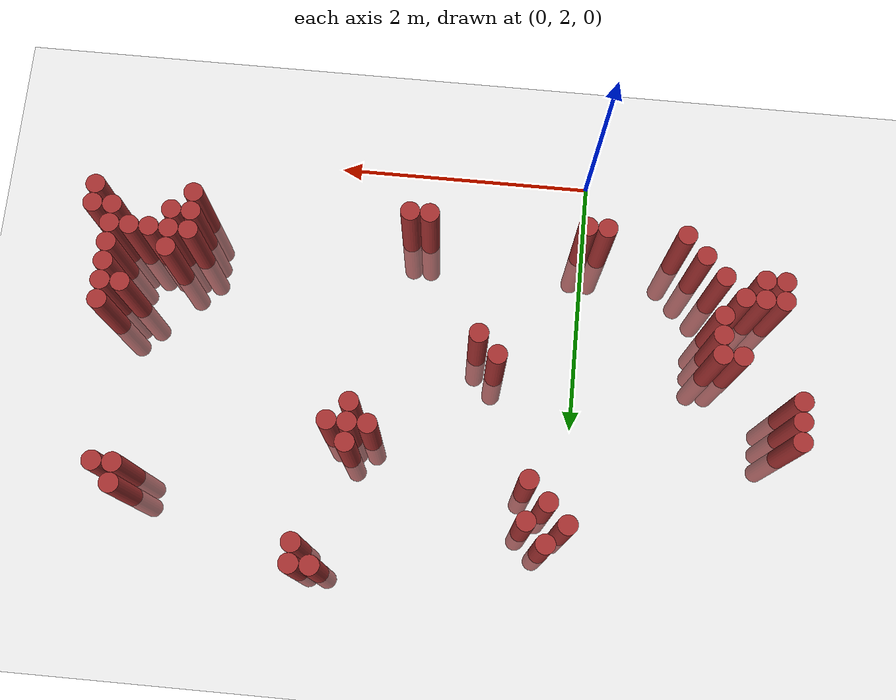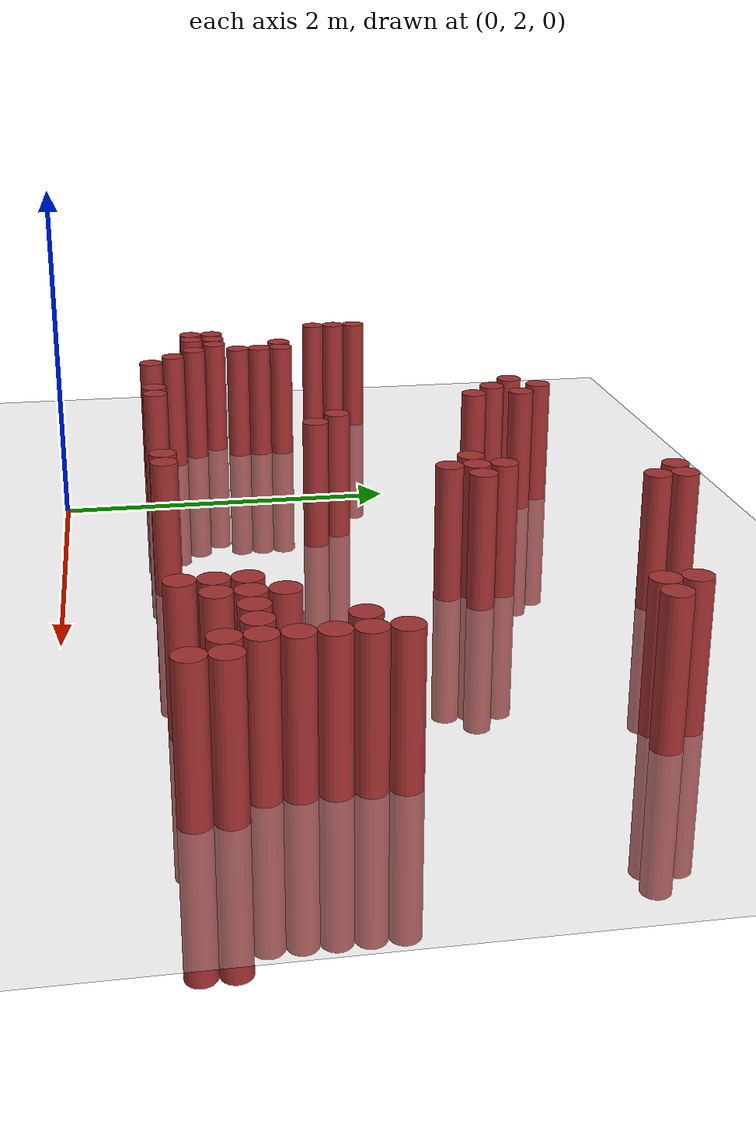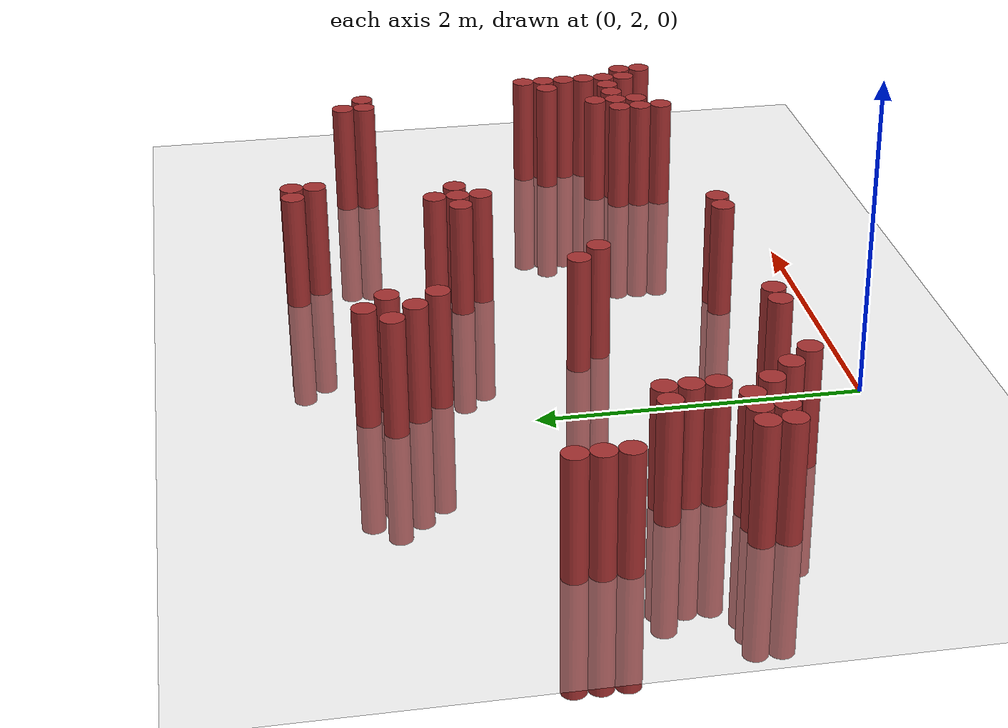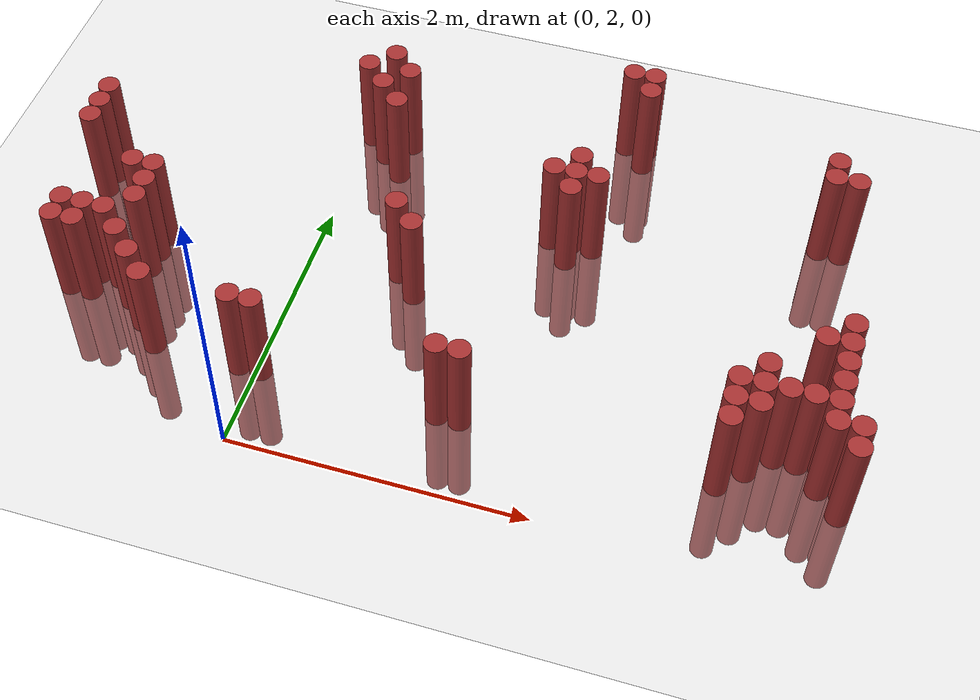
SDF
<sdf version="1.6">
 <world name="default">
  <model name="ground_plane">
   <static>1</static>
   <link name="link">
    <collision name="collision">
     <geometry><plane><normal>0 0 1</normal><size>100 100</size></plane></geometry>
     <surface><friction><ode><mu>100</mu><mu2>50</mu2></ode></friction></surface>
    </collision>
    <visual name="visual">
     <cast_shadows>0</cast_shadows>
     <geometry><plane><normal>0 0 1</normal><size>100 100</size></plane></geometry>
     <material>
      <script><uri>file://media/materials/scripts/gazebo.material</uri><name>Gazebo/Grey</name></script>
     </material>
    </visual>
   </link>
  </model>
  <model name="unit_cylinder_338">
   <static>1</static>
   <pose>-1.625000 3.775000 0.000000 0.000000 0.000000 0.000000</pose>
   <link name="link">
    <inertial>
     <mass>1</mass>
     <inertia><ixx>0.145833</ixx><ixy>0</ixy><ixz>0</ixz><iyy>0.145833</iyy><iyz>0</iyz><izz>0.125</izz></inertia>
    </inertial>
    <collision name="collision">
     <geometry><cylinder><radius>0.075000</radius><length>1.5</length></cylinder></geometry>
    </collision>
    <visual name="visual">
     <geometry><cylinder><radius>0.075000</radius><length>1.5</length></cylinder></geometry>
     <material>
      <ambient>0.648000 0.192000 0.192000 1</ambient>
      <diffuse>0.648000 0.192000 0.192000 1</diffuse>
     </material>
     <material>
      <script><name>Gazebo/Grey</name><uri>file://media/materials/scripts/gazebo.material</uri></script>
     </material>
    </visual>
   </link>
  </model>
  <model name="unit_cylinder_339">
   <static>1</static>
   <pose>-1.625000 3.925000 0.000000 0.000000 0.000000 0.000000</pose>
   <link name="link">
    <inertial>
     <mass>1</mass>
     <inertia><ixx>0.145833</ixx><ixy>0</ixy><ixz>0</ixz><iyy>0.145833</iyy><iyz>0</iyz><izz>0.125</izz></inertia>
    </inertial>
    <collision name="collision">
     <geometry><cylinder><radius>0.075000</radius><length>1.5</length></cylinder></geometry>
    </collision>
    <visual name="visual">
     <geometry><cylinder><radius>0.075000</radius><length>1.5</length></cylinder></geometry>
     <material>
      <ambient>0.648000 0.192000 0.192000 1</ambient>
      <diffuse>0.648000 0.192000 0.192000 1</diffuse>
     </material>
     <material>
      <script><name>Gazebo/Grey</name><uri>file://media/materials/scripts/gazebo.material</uri></script>
     </material>
    </visual>
   </link>
  </model>
  <model name="unit_cylinder_340">
   <static>1</static>
   <pose>-1.625000 4.075000 0.000000 0.000000 0.000000 0.000000</pose>
   <link name="link">
    <inertial>
     <mass>1</mass>
     <inertia><ixx>0.145833</ixx><ixy>0</ixy><ixz>0</ixz><iyy>0.145833</iyy><iyz>0</iyz><izz>0.125</izz></inertia>
    </inertial>
    <collision name="collision">
     <geometry><cylinder><radius>0.075000</radius><length>1.5</length></cylinder></geometry>
    </collision>
    <visual name="visual">
     <geometry><cylinder><radius>0.075000</radius><length>1.5</length></cylinder></geometry>
     <material>
      <ambient>0.648000 0.192000 0.192000 1</ambient>
      <diffuse>0.648000 0.192000 0.192000 1</diffuse>
     </material>
     <material>
      <script><name>Gazebo/Grey</name><uri>file://media/materials/scripts/gazebo.material</uri></script>
     </material>
    </visual>
   </link>
  </model>
  <model name="unit_cylinder_341">
   <static>1</static>
   <pose>-1.475000 2.875000 0.000000 0.000000 0.000000 0.000000</pose>
   <link name="link">
    <inertial>
     <mass>1</mass>
     <inertia><ixx>0.145833</ixx><ixy>0</ixy><ixz>0</ixz><iyy>0.145833</iyy><iyz>0</iyz><izz>0.125</izz></inertia>
    </inertial>
    <collision name="collision">
     <geometry><cylinder><radius>0.075000</radius><length>1.5</length></cylinder></geometry>
    </collision>
    <visual name="visual">
     <geometry><cylinder><radius>0.075000</radius><length>1.5</length></cylinder></geometry>
     <material>
      <ambient>0.648000 0.192000 0.192000 1</ambient>
      <diffuse>0.648000 0.192000 0.192000 1</diffuse>
     </material>
     <material>
      <script><name>Gazebo/Grey</name><uri>file://media/materials/scripts/gazebo.material</uri></script>
     </material>
    </visual>
   </link>
  </model>
  <model name="unit_cylinder_342">
   <static>1</static>
   <pose>-1.475000 3.025000 0.000000 0.000000 0.000000 0.000000</pose>
   <link name="link">
    <inertial>
     <mass>1</mass>
     <inertia><ixx>0.145833</ixx><ixy>0</ixy><ixz>0</ixz><iyy>0.145833</iyy><iyz>0</iyz><izz>0.125</izz></inertia>
    </inertial>
    <collision name="collision">
     <geometry><cylinder><radius>0.075000</radius><length>1.5</length></cylinder></geometry>
    </collision>
    <visual name="visual">
     <geometry><cylinder><radius>0.075000</radius><length>1.5</length></cylinder></geometry>
     <material>
      <ambient>0.648000 0.192000 0.192000 1</ambient>
      <diffuse>0.648000 0.192000 0.192000 1</diffuse>
     </material>
     <material>
      <script><name>Gazebo/Grey</name><uri>file://media/materials/scripts/gazebo.material</uri></script>
     </material>
    </visual>
   </link>
  </model>
  <model name="unit_cylinder_347">
   <static>1</static>
   <pose>-1.325000 2.875000 0.000000 0.000000 0.000000 0.000000</pose>
   <link name="link">
    <inertial>
     <mass>1</mass>
     <inertia><ixx>0.145833</ixx><ixy>0</ixy><ixz>0</ixz><iyy>0.145833</iyy><iyz>0</iyz><izz>0.125</izz></inertia>
    </inertial>
    <collision name="collision">
     <geometry><cylinder><radius>0.075000</radius><length>1.5</length></cylinder></geometry>
    </collision>
    <visual name="visual">
     <geometry><cylinder><radius>0.075000</radius><length>1.5</length></cylinder></geometry>
     <material>
      <ambient>0.648000 0.192000 0.192000 1</ambient>
      <diffuse>0.648000 0.192000 0.192000 1</diffuse>
     </material>
     <material>
      <script><name>Gazebo/Grey</name><uri>file://media/materials/scripts/gazebo.material</uri></script>
     </material>
    </visual>
   </link>
  </model>
  <model name="unit_cylinder_348">
   <static>1</static>
   <pose>-1.325000 3.025000 0.000000 0.000000 0.000000 0.000000</pose>
   <link name="link">
    <inertial>
     <mass>1</mass>
     <inertia><ixx>0.145833</ixx><ixy>0</ixy><ixz>0</ixz><iyy>0.145833</iyy><iyz>0</iyz><izz>0.125</izz></inertia>
    </inertial>
    <collision name="collision">
     <geometry><cylinder><radius>0.075000</radius><length>1.5</length></cylinder></geometry>
    </collision>
    <visual name="visual">
     <geometry><cylinder><radius>0.075000</radius><length>1.5</length></cylinder></geometry>
     <material>
      <ambient>0.648000 0.192000 0.192000 1</ambient>
      <diffuse>0.648000 0.192000 0.192000 1</diffuse>
     </material>
     <material>
      <script><name>Gazebo/Grey</name><uri>file://media/materials/scripts/gazebo.material</uri></script>
     </material>
    </visual>
   </link>
  </model>
  <model name="unit_cylinder_351">
   <static>1</static>
   <pose>-1.175000 3.025000 0.000000 0.000000 0.000000 0.000000</pose>
   <link name="link">
    <inertial>
     <mass>1</mass>
     <inertia><ixx>0.145833</ixx><ixy>0</ixy><ixz>0</ixz><iyy>0.145833</iyy><iyz>0</iyz><izz>0.125</izz></inertia>
    </inertial>
    <collision name="collision">
     <geometry><cylinder><radius>0.075000</radius><length>1.5</length></cylinder></geometry>
    </collision>
    <visual name="visual">
     <geometry><cylinder><radius>0.075000</radius><length>1.5</length></cylinder></geometry>
     <material>
      <ambient>0.648000 0.192000 0.192000 1</ambient>
      <diffuse>0.648000 0.192000 0.192000 1</diffuse>
     </material>
     <material>
      <script><name>Gazebo/Grey</name><uri>file://media/materials/scripts/gazebo.material</uri></script>
     </material>
    </visual>
   </link>
  </model>
  <model name="unit_cylinder_352">
   <static>1</static>
   <pose>-1.175000 3.475000 0.000000 0.000000 0.000000 0.000000</pose>
   <link name="link">
    <inertial>
     <mass>1</mass>
     <inertia><ixx>0.145833</ixx><ixy>0</ixy><ixz>0</ixz><iyy>0.145833</iyy><iyz>0</iyz><izz>0.125</izz></inertia>
    </inertial>
    <collision name="collision">
     <geometry><cylinder><radius>0.075000</radius><length>1.5</length></cylinder></geometry>
    </collision>
    <visual name="visual">
     <geometry><cylinder><radius>0.075000</radius><length>1.5</length></cylinder></geometry>
     <material>
      <ambient>0.648000 0.192000 0.192000 1</ambient>
      <diffuse>0.648000 0.192000 0.192000 1</diffuse>
     </material>
     <material>
      <script><name>Gazebo/Grey</name><uri>file://media/materials/scripts/gazebo.material</uri></script>
     </material>
    </visual>
   </link>
  </model>
  <model name="unit_cylinder_358">
   <static>1</static>
   <pose>-1.025000 2.875000 0.000000 0.000000 0.000000 0.000000</pose>
   <link name="link">
    <inertial>
     <mass>1</mass>
     <inertia><ixx>0.145833</ixx><ixy>0</ixy><ixz>0</ixz><iyy>0.145833</iyy><iyz>0</iyz><izz>0.125</izz></inertia>
    </inertial>
    <collision name="collision">
     <geometry><cylinder><radius>0.075000</radius><length>1.5</length></cylinder></geometry>
    </collision>
    <visual name="visual">
     <geometry><cylinder><radius>0.075000</radius><length>1.5</length></cylinder></geometry>
     <material>
      <ambient>0.648000 0.192000 0.192000 1</ambient>
      <diffuse>0.648000 0.192000 0.192000 1</diffuse>
     </material>
     <material>
      <script><name>Gazebo/Grey</name><uri>file://media/materials/scripts/gazebo.material</uri></script>
     </material>
    </visual>
   </link>
  </model>
  <model name="unit_cylinder_359">
   <static>1</static>
   <pose>-1.025000 3.175000 0.000000 0.000000 0.000000 0.000000</pose>
   <link name="link">
    <inertial>
     <mass>1</mass>
     <inertia><ixx>0.145833</ixx><ixy>0</ixy><ixz>0</ixz><iyy>0.145833</iyy><iyz>0</iyz><izz>0.125</izz></inertia>
    </inertial>
    <collision name="collision">
     <geometry><cylinder><radius>0.075000</radius><length>1.5</length></cylinder></geometry>
    </collision>
    <visual name="visual">
     <geometry><cylinder><radius>0.075000</radius><length>1.5</length></cylinder></geometry>
     <material>
      <ambient>0.648000 0.192000 0.192000 1</ambient>
      <diffuse>0.648000 0.192000 0.192000 1</diffuse>
     </material>
     <material>
      <script><name>Gazebo/Grey</name><uri>file://media/materials/scripts/gazebo.material</uri></script>
     </material>
    </visual>
   </link>
  </model>
  <model name="unit_cylinder_360">
   <static>1</static>
   <pose>-1.025000 3.325000 0.000000 0.000000 0.000000 0.000000</pose>
   <link name="link">
    <inertial>
     <mass>1</mass>
     <inertia><ixx>0.145833</ixx><ixy>0</ixy><ixz>0</ixz><iyy>0.145833</iyy><iyz>0</iyz><izz>0.125</izz></inertia>
    </inertial>
    <collision name="collision">
     <geometry><cylinder><radius>0.075000</radius><length>1.5</length></cylinder></geometry>
    </collision>
    <visual name="visual">
     <geometry><cylinder><radius>0.075000</radius><length>1.5</length></cylinder></geometry>
     <material>
      <ambient>0.648000 0.192000 0.192000 1</ambient>
      <diffuse>0.648000 0.192000 0.192000 1</diffuse>
     </material>
     <material>
      <script><name>Gazebo/Grey</name><uri>file://media/materials/scripts/gazebo.material</uri></script>
     </material>
    </visual>
   </link>
  </model>
  <model name="unit_cylinder_361">
   <static>1</static>
   <pose>-1.025000 3.475000 0.000000 0.000000 0.000000 0.000000</pose>
   <link name="link">
    <inertial>
     <mass>1</mass>
     <inertia><ixx>0.145833</ixx><ixy>0</ixy><ixz>0</ixz><iyy>0.145833</iyy><iyz>0</iyz><izz>0.125</izz></inertia>
    </inertial>
    <collision name="collision">
     <geometry><cylinder><radius>0.075000</radius><length>1.5</length></cylinder></geometry>
    </collision>
    <visual name="visual">
     <geometry><cylinder><radius>0.075000</radius><length>1.5</length></cylinder></geometry>
     <material>
      <ambient>0.648000 0.192000 0.192000 1</ambient>
      <diffuse>0.648000 0.192000 0.192000 1</diffuse>
     </material>
     <material>
      <script><name>Gazebo/Grey</name><uri>file://media/materials/scripts/gazebo.material</uri></script>
     </material>
    </visual>
   </link>
  </model>
  <model name="unit_cylinder_366">
   <static>1</static>
   <pose>-0.875000 2.725000 0.000000 0.000000 0.000000 0.000000</pose>
   <link name="link">
    <inertial>
     <mass>1</mass>
     <inertia><ixx>0.145833</ixx><ixy>0</ixy><ixz>0</ixz><iyy>0.145833</iyy><iyz>0</iyz><izz>0.125</izz></inertia>
    </inertial>
    <collision name="collision">
     <geometry><cylinder><radius>0.075000</radius><length>1.5</length></cylinder></geometry>
    </collision>
    <visual name="visual">
     <geometry><cylinder><radius>0.075000</radius><length>1.5</length></cylinder></geometry>
     <material>
      <ambient>0.648000 0.192000 0.192000 1</ambient>
      <diffuse>0.648000 0.192000 0.192000 1</diffuse>
     </material>
     <material>
      <script><name>Gazebo/Grey</name><uri>file://media/materials/scripts/gazebo.material</uri></script>
     </material>
    </visual>
   </link>
  </model>
  <model name="unit_cylinder_370">
   <static>1</static>
   <pose>-0.725000 2.575000 0.000000 0.000000 0.000000 0.000000</pose>
   <link name="link">
    <inertial>
     <mass>1</mass>
     <inertia><ixx>0.145833</ixx><ixy>0</ixy><ixz>0</ixz><iyy>0.145833</iyy><iyz>0</iyz><izz>0.125</izz></inertia>
    </inertial>
    <collision name="collision">
     <geometry><cylinder><radius>0.075000</radius><length>1.5</length></cylinder></geometry>
    </collision>
    <visual name="visual">
     <geometry><cylinder><radius>0.075000</radius><length>1.5</length></cylinder></geometry>
     <material>
      <ambient>0.648000 0.192000 0.192000 1</ambient>
      <diffuse>0.648000 0.192000 0.192000 1</diffuse>
     </material>
     <material>
      <script><name>Gazebo/Grey</name><uri>file://media/materials/scripts/gazebo.material</uri></script>
     </material>
    </visual>
   </link>
  </model>
  <model name="unit_cylinder_386">
   <static>1</static>
   <pose>-0.125000 2.575000 0.000000 0.000000 0.000000 0.000000</pose>
   <link name="link">
    <inertial>
     <mass>1</mass>
     <inertia><ixx>0.145833</ixx><ixy>0</ixy><ixz>0</ixz><iyy>0.145833</iyy><iyz>0</iyz><izz>0.125</izz></inertia>
    </inertial>
    <collision name="collision">
     <geometry><cylinder><radius>0.075000</radius><length>1.5</length></cylinder></geometry>
    </collision>
    <visual name="visual">
     <geometry><cylinder><radius>0.075000</radius><length>1.5</length></cylinder></geometry>
     <material>
      <ambient>0.648000 0.192000 0.192000 1</ambient>
      <diffuse>0.648000 0.192000 0.192000 1</diffuse>
     </material>
     <material>
      <script><name>Gazebo/Grey</name><uri>file://media/materials/scripts/gazebo.material</uri></script>
     </material>
    </visual>
   </link>
  </model>
  <model name="unit_cylinder_389">
   <static>1</static>
   <pose>0.025000 2.575000 0.000000 0.000000 0.000000 0.000000</pose>
   <link name="link">
    <inertial>
     <mass>1</mass>
     <inertia><ixx>0.145833</ixx><ixy>0</ixy><ixz>0</ixz><iyy>0.145833</iyy><iyz>0</iyz><izz>0.125</izz></inertia>
    </inertial>
    <collision name="collision">
     <geometry><cylinder><radius>0.075000</radius><length>1.5</length></cylinder></geometry>
    </collision>
    <visual name="visual">
     <geometry><cylinder><radius>0.075000</radius><length>1.5</length></cylinder></geometry>
     <material>
      <ambient>0.648000 0.192000 0.192000 1</ambient>
      <diffuse>0.648000 0.192000 0.192000 1</diffuse>
     </material>
     <material>
      <script><name>Gazebo/Grey</name><uri>file://media/materials/scripts/gazebo.material</uri></script>
     </material>
    </visual>
   </link>
  </model>
  <model name="unit_cylinder_390">
   <static>1</static>
   <pose>0.025000 4.825000 0.000000 0.000000 0.000000 0.000000</pose>
   <link name="link">
    <inertial>
     <mass>1</mass>
     <inertia><ixx>0.145833</ixx><ixy>0</ixy><ixz>0</ixz><iyy>0.145833</iyy><iyz>0</iyz><izz>0.125</izz></inertia>
    </inertial>
    <collision name="collision">
     <geometry><cylinder><radius>0.075000</radius><length>1.5</length></cylinder></geometry>
    </collision>
    <visual name="visual">
     <geometry><cylinder><radius>0.075000</radius><length>1.5</length></cylinder></geometry>
     <material>
      <ambient>0.648000 0.192000 0.192000 1</ambient>
      <diffuse>0.648000 0.192000 0.192000 1</diffuse>
     </material>
     <material>
      <script><name>Gazebo/Grey</name><uri>file://media/materials/scripts/gazebo.material</uri></script>
     </material>
    </visual>
   </link>
  </model>
  <model name="unit_cylinder_392">
   <static>1</static>
   <pose>0.175000 4.675000 0.000000 0.000000 0.000000 0.000000</pose>
   <link name="link">
    <inertial>
     <mass>1</mass>
     <inertia><ixx>0.145833</ixx><ixy>0</ixy><ixz>0</ixz><iyy>0.145833</iyy><iyz>0</iyz><izz>0.125</izz></inertia>
    </inertial>
    <collision name="collision">
     <geometry><cylinder><radius>0.075000</radius><length>1.5</length></cylinder></geometry>
    </collision>
    <visual name="visual">
     <geometry><cylinder><radius>0.075000</radius><length>1.5</length></cylinder></geometry>
     <material>
      <ambient>0.648000 0.192000 0.192000 1</ambient>
      <diffuse>0.648000 0.192000 0.192000 1</diffuse>
     </material>
     <material>
      <script><name>Gazebo/Grey</name><uri>file://media/materials/scripts/gazebo.material</uri></script>
     </material>
    </visual>
   </link>
  </model>
  <model name="unit_cylinder_393">
   <static>1</static>
   <pose>0.175000 4.975000 0.000000 0.000000 0.000000 0.000000</pose>
   <link name="link">
    <inertial>
     <mass>1</mass>
     <inertia><ixx>0.145833</ixx><ixy>0</ixy><ixz>0</ixz><iyy>0.145833</iyy><iyz>0</iyz><izz>0.125</izz></inertia>
    </inertial>
    <collision name="collision">
     <geometry><cylinder><radius>0.075000</radius><length>1.5</length></cylinder></geometry>
    </collision>
    <visual name="visual">
     <geometry><cylinder><radius>0.075000</radius><length>1.5</length></cylinder></geometry>
     <material>
      <ambient>0.648000 0.192000 0.192000 1</ambient>
      <diffuse>0.648000 0.192000 0.192000 1</diffuse>
     </material>
     <material>
      <script><name>Gazebo/Grey</name><uri>file://media/materials/scripts/gazebo.material</uri></script>
     </material>
    </visual>
   </link>
  </model>
  <model name="unit_cylinder_394">
   <static>1</static>
   <pose>0.325000 4.525000 0.000000 0.000000 0.000000 0.000000</pose>
   <link name="link">
    <inertial>
     <mass>1</mass>
     <inertia><ixx>0.145833</ixx><ixy>0</ixy><ixz>0</ixz><iyy>0.145833</iyy><iyz>0</iyz><izz>0.125</izz></inertia>
    </inertial>
    <collision name="collision">
     <geometry><cylinder><radius>0.075000</radius><length>1.5</length></cylinder></geometry>
    </collision>
    <visual name="visual">
     <geometry><cylinder><radius>0.075000</radius><length>1.5</length></cylinder></geometry>
     <material>
      <ambient>0.648000 0.192000 0.192000 1</ambient>
      <diffuse>0.648000 0.192000 0.192000 1</diffuse>
     </material>
     <material>
      <script><name>Gazebo/Grey</name><uri>file://media/materials/scripts/gazebo.material</uri></script>
     </material>
    </visual>
   </link>
  </model>
  <model name="unit_cylinder_395">
   <static>1</static>
   <pose>0.325000 4.825000 0.000000 0.000000 0.000000 0.000000</pose>
   <link name="link">
    <inertial>
     <mass>1</mass>
     <inertia><ixx>0.145833</ixx><ixy>0</ixy><ixz>0</ixz><iyy>0.145833</iyy><iyz>0</iyz><izz>0.125</izz></inertia>
    </inertial>
    <collision name="collision">
     <geometry><cylinder><radius>0.075000</radius><length>1.5</length></cylinder></geometry>
    </collision>
    <visual name="visual">
     <geometry><cylinder><radius>0.075000</radius><length>1.5</length></cylinder></geometry>
     <material>
      <ambient>0.648000 0.192000 0.192000 1</ambient>
      <diffuse>0.648000 0.192000 0.192000 1</diffuse>
     </material>
     <material>
      <script><name>Gazebo/Grey</name><uri>file://media/materials/scripts/gazebo.material</uri></script>
     </material>
    </visual>
   </link>
  </model>
  <model name="unit_cylinder_396">
   <static>1</static>
   <pose>0.625000 3.625000 0.000000 0.000000 0.000000 0.000000</pose>
   <link name="link">
    <inertial>
     <mass>1</mass>
     <inertia><ixx>0.145833</ixx><ixy>0</ixy><ixz>0</ixz><iyy>0.145833</iyy><iyz>0</iyz><izz>0.125</izz></inertia>
    </inertial>
    <collision name="collision">
     <geometry><cylinder><radius>0.075000</radius><length>1.5</length></cylinder></geometry>
    </collision>
    <visual name="visual">
     <geometry><cylinder><radius>0.075000</radius><length>1.5</length></cylinder></geometry>
     <material>
      <ambient>0.648000 0.192000 0.192000 1</ambient>
      <diffuse>0.648000 0.192000 0.192000 1</diffuse>
     </material>
     <material>
      <script><name>Gazebo/Grey</name><uri>file://media/materials/scripts/gazebo.material</uri></script>
     </material>
    </visual>
   </link>
  </model>
  <model name="unit_cylinder_397">
   <static>1</static>
   <pose>0.775000 3.475000 0.000000 0.000000 0.000000 0.000000</pose>
   <link name="link">
    <inertial>
     <mass>1</mass>
     <inertia><ixx>0.145833</ixx><ixy>0</ixy><ixz>0</ixz><iyy>0.145833</iyy><iyz>0</iyz><izz>0.125</izz></inertia>
    </inertial>
    <collision name="collision">
     <geometry><cylinder><radius>0.075000</radius><length>1.5</length></cylinder></geometry>
    </collision>
    <visual name="visual">
     <geometry><cylinder><radius>0.075000</radius><length>1.5</length></cylinder></geometry>
     <material>
      <ambient>0.648000 0.192000 0.192000 1</ambient>
      <diffuse>0.648000 0.192000 0.192000 1</diffuse>
     </material>
     <material>
      <script><name>Gazebo/Grey</name><uri>file://media/materials/scripts/gazebo.material</uri></script>
     </material>
    </visual>
   </link>
  </model>
  <model name="unit_cylinder_398">
   <static>1</static>
   <pose>1.225000 2.575000 0.000000 0.000000 0.000000 0.000000</pose>
   <link name="link">
    <inertial>
     <mass>1</mass>
     <inertia><ixx>0.145833</ixx><ixy>0</ixy><ixz>0</ixz><iyy>0.145833</iyy><iyz>0</iyz><izz>0.125</izz></inertia>
    </inertial>
    <collision name="collision">
     <geometry><cylinder><radius>0.075000</radius><length>1.5</length></cylinder></geometry>
    </collision>
    <visual name="visual">
     <geometry><cylinder><radius>0.075000</radius><length>1.5</length></cylinder></geometry>
     <material>
      <ambient>0.648000 0.192000 0.192000 1</ambient>
      <diffuse>0.648000 0.192000 0.192000 1</diffuse>
     </material>
     <material>
      <script><name>Gazebo/Grey</name><uri>file://media/materials/scripts/gazebo.material</uri></script>
     </material>
    </visual>
   </link>
  </model>
  <model name="unit_cylinder_400">
   <static>1</static>
   <pose>1.375000 2.575000 0.000000 0.000000 0.000000 0.000000</pose>
   <link name="link">
    <inertial>
     <mass>1</mass>
     <inertia><ixx>0.145833</ixx><ixy>0</ixy><ixz>0</ixz><iyy>0.145833</iyy><iyz>0</iyz><izz>0.125</izz></inertia>
    </inertial>
    <collision name="collision">
     <geometry><cylinder><radius>0.075000</radius><length>1.5</length></cylinder></geometry>
    </collision>
    <visual name="visual">
     <geometry><cylinder><radius>0.075000</radius><length>1.5</length></cylinder></geometry>
     <material>
      <ambient>0.648000 0.192000 0.192000 1</ambient>
      <diffuse>0.648000 0.192000 0.192000 1</diffuse>
     </material>
     <material>
      <script><name>Gazebo/Grey</name><uri>file://media/materials/scripts/gazebo.material</uri></script>
     </material>
    </visual>
   </link>
  </model>
  <model name="unit_cylinder_401">
   <static>1</static>
   <pose>1.525000 4.225000 0.000000 0.000000 0.000000 0.000000</pose>
   <link name="link">
    <inertial>
     <mass>1</mass>
     <inertia><ixx>0.145833</ixx><ixy>0</ixy><ixz>0</ixz><iyy>0.145833</iyy><iyz>0</iyz><izz>0.125</izz></inertia>
    </inertial>
    <collision name="collision">
     <geometry><cylinder><radius>0.075000</radius><length>1.5</length></cylinder></geometry>
    </collision>
    <visual name="visual">
     <geometry><cylinder><radius>0.075000</radius><length>1.5</length></cylinder></geometry>
     <material>
      <ambient>0.648000 0.192000 0.192000 1</ambient>
      <diffuse>0.648000 0.192000 0.192000 1</diffuse>
     </material>
     <material>
      <script><name>Gazebo/Grey</name><uri>file://media/materials/scripts/gazebo.material</uri></script>
     </material>
    </visual>
   </link>
  </model>
  <model name="unit_cylinder_404">
   <static>1</static>
   <pose>1.675000 4.075000 0.000000 0.000000 0.000000 0.000000</pose>
   <link name="link">
    <inertial>
     <mass>1</mass>
     <inertia><ixx>0.145833</ixx><ixy>0</ixy><ixz>0</ixz><iyy>0.145833</iyy><iyz>0</iyz><izz>0.125</izz></inertia>
    </inertial>
    <collision name="collision">
     <geometry><cylinder><radius>0.075000</radius><length>1.5</length></cylinder></geometry>
    </collision>
    <visual name="visual">
     <geometry><cylinder><radius>0.075000</radius><length>1.5</length></cylinder></geometry>
     <material>
      <ambient>0.648000 0.192000 0.192000 1</ambient>
      <diffuse>0.648000 0.192000 0.192000 1</diffuse>
     </material>
     <material>
      <script><name>Gazebo/Grey</name><uri>file://media/materials/scripts/gazebo.material</uri></script>
     </material>
    </visual>
   </link>
  </model>
  <model name="unit_cylinder_405">
   <static>1</static>
   <pose>1.675000 4.225000 0.000000 0.000000 0.000000 0.000000</pose>
   <link name="link">
    <inertial>
     <mass>1</mass>
     <inertia><ixx>0.145833</ixx><ixy>0</ixy><ixz>0</ixz><iyy>0.145833</iyy><iyz>0</iyz><izz>0.125</izz></inertia>
    </inertial>
    <collision name="collision">
     <geometry><cylinder><radius>0.075000</radius><length>1.5</length></cylinder></geometry>
    </collision>
    <visual name="visual">
     <geometry><cylinder><radius>0.075000</radius><length>1.5</length></cylinder></geometry>
     <material>
      <ambient>0.648000 0.192000 0.192000 1</ambient>
      <diffuse>0.648000 0.192000 0.192000 1</diffuse>
     </material>
     <material>
      <script><name>Gazebo/Grey</name><uri>file://media/materials/scripts/gazebo.material</uri></script>
     </material>
    </visual>
   </link>
  </model>
  <model name="unit_cylinder_406">
   <static>1</static>
   <pose>1.675000 4.375000 0.000000 0.000000 0.000000 0.000000</pose>
   <link name="link">
    <inertial>
     <mass>1</mass>
     <inertia><ixx>0.145833</ixx><ixy>0</ixy><ixz>0</ixz><iyy>0.145833</iyy><iyz>0</iyz><izz>0.125</izz></inertia>
    </inertial>
    <collision name="collision">
     <geometry><cylinder><radius>0.075000</radius><length>1.5</length></cylinder></geometry>
    </collision>
    <visual name="visual">
     <geometry><cylinder><radius>0.075000</radius><length>1.5</length></cylinder></geometry>
     <material>
      <ambient>0.648000 0.192000 0.192000 1</ambient>
      <diffuse>0.648000 0.192000 0.192000 1</diffuse>
     </material>
     <material>
      <script><name>Gazebo/Grey</name><uri>file://media/materials/scripts/gazebo.material</uri></script>
     </material>
    </visual>
   </link>
  </model>
  <model name="unit_cylinder_409">
   <static>1</static>
   <pose>1.825000 4.225000 0.000000 0.000000 0.000000 0.000000</pose>
   <link name="link">
    <inertial>
     <mass>1</mass>
     <inertia><ixx>0.145833</ixx><ixy>0</ixy><ixz>0</ixz><iyy>0.145833</iyy><iyz>0</iyz><izz>0.125</izz></inertia>
    </inertial>
    <collision name="collision">
     <geometry><cylinder><radius>0.075000</radius><length>1.5</length></cylinder></geometry>
    </collision>
    <visual name="visual">
     <geometry><cylinder><radius>0.075000</radius><length>1.5</length></cylinder></geometry>
     <material>
      <ambient>0.648000 0.192000 0.192000 1</ambient>
      <diffuse>0.648000 0.192000 0.192000 1</diffuse>
     </material>
     <material>
      <script><name>Gazebo/Grey</name><uri>file://media/materials/scripts/gazebo.material</uri></script>
     </material>
    </visual>
   </link>
  </model>
  <model name="unit_cylinder_410">
   <static>1</static>
   <pose>1.825000 5.275000 0.000000 0.000000 0.000000 0.000000</pose>
   <link name="link">
    <inertial>
     <mass>1</mass>
     <inertia><ixx>0.145833</ixx><ixy>0</ixy><ixz>0</ixz><iyy>0.145833</iyy><iyz>0</iyz><izz>0.125</izz></inertia>
    </inertial>
    <collision name="collision">
     <geometry><cylinder><radius>0.075000</radius><length>1.5</length></cylinder></geometry>
    </collision>
    <visual name="visual">
     <geometry><cylinder><radius>0.075000</radius><length>1.5</length></cylinder></geometry>
     <material>
      <ambient>0.648000 0.192000 0.192000 1</ambient>
      <diffuse>0.648000 0.192000 0.192000 1</diffuse>
     </material>
     <material>
      <script><name>Gazebo/Grey</name><uri>file://media/materials/scripts/gazebo.material</uri></script>
     </material>
    </visual>
   </link>
  </model>
  <model name="unit_cylinder_412">
   <static>1</static>
   <pose>1.975000 5.125000 0.000000 0.000000 0.000000 0.000000</pose>
   <link name="link">
    <inertial>
     <mass>1</mass>
     <inertia><ixx>0.145833</ixx><ixy>0</ixy><ixz>0</ixz><iyy>0.145833</iyy><iyz>0</iyz><izz>0.125</izz></inertia>
    </inertial>
    <collision name="collision">
     <geometry><cylinder><radius>0.075000</radius><length>1.5</length></cylinder></geometry>
    </collision>
    <visual name="visual">
     <geometry><cylinder><radius>0.075000</radius><length>1.5</length></cylinder></geometry>
     <material>
      <ambient>0.648000 0.192000 0.192000 1</ambient>
      <diffuse>0.648000 0.192000 0.192000 1</diffuse>
     </material>
     <material>
      <script><name>Gazebo/Grey</name><uri>file://media/materials/scripts/gazebo.material</uri></script>
     </material>
    </visual>
   </link>
  </model>
  <model name="unit_cylinder_413">
   <static>1</static>
   <pose>1.975000 5.275000 0.000000 0.000000 0.000000 0.000000</pose>
   <link name="link">
    <inertial>
     <mass>1</mass>
     <inertia><ixx>0.145833</ixx><ixy>0</ixy><ixz>0</ixz><iyy>0.145833</iyy><iyz>0</iyz><izz>0.125</izz></inertia>
    </inertial>
    <collision name="collision">
     <geometry><cylinder><radius>0.075000</radius><length>1.5</length></cylinder></geometry>
    </collision>
    <visual name="visual">
     <geometry><cylinder><radius>0.075000</radius><length>1.5</length></cylinder></geometry>
     <material>
      <ambient>0.648000 0.192000 0.192000 1</ambient>
      <diffuse>0.648000 0.192000 0.192000 1</diffuse>
     </material>
     <material>
      <script><name>Gazebo/Grey</name><uri>file://media/materials/scripts/gazebo.material</uri></script>
     </material>
    </visual>
   </link>
  </model>
  <model name="unit_cylinder_435">
   <static>1</static>
   <pose>3.025000 2.575000 0.000000 0.000000 0.000000 0.000000</pose>
   <link name="link">
    <inertial>
     <mass>1</mass>
     <inertia><ixx>0.145833</ixx><ixy>0</ixy><ixz>0</ixz><iyy>0.145833</iyy><iyz>0</iyz><izz>0.125</izz></inertia>
    </inertial>
    <collision name="collision">
     <geometry><cylinder><radius>0.075000</radius><length>1.5</length></cylinder></geometry>
    </collision>
    <visual name="visual">
     <geometry><cylinder><radius>0.075000</radius><length>1.5</length></cylinder></geometry>
     <material>
      <ambient>0.648000 0.192000 0.192000 1</ambient>
      <diffuse>0.648000 0.192000 0.192000 1</diffuse>
     </material>
     <material>
      <script><name>Gazebo/Grey</name><uri>file://media/materials/scripts/gazebo.material</uri></script>
     </material>
    </visual>
   </link>
  </model>
  <model name="unit_cylinder_436">
   <static>1</static>
   <pose>3.025000 2.725000 0.000000 0.000000 0.000000 0.000000</pose>
   <link name="link">
    <inertial>
     <mass>1</mass>
     <inertia><ixx>0.145833</ixx><ixy>0</ixy><ixz>0</ixz><iyy>0.145833</iyy><iyz>0</iyz><izz>0.125</izz></inertia>
    </inertial>
    <collision name="collision">
     <geometry><cylinder><radius>0.075000</radius><length>1.5</length></cylinder></geometry>
    </collision>
    <visual name="visual">
     <geometry><cylinder><radius>0.075000</radius><length>1.5</length></cylinder></geometry>
     <material>
      <ambient>0.648000 0.192000 0.192000 1</ambient>
      <diffuse>0.648000 0.192000 0.192000 1</diffuse>
     </material>
     <material>
      <script><name>Gazebo/Grey</name><uri>file://media/materials/scripts/gazebo.material</uri></script>
     </material>
    </visual>
   </link>
  </model>
  <model name="unit_cylinder_437">
   <static>1</static>
   <pose>3.025000 2.875000 0.000000 0.000000 0.000000 0.000000</pose>
   <link name="link">
    <inertial>
     <mass>1</mass>
     <inertia><ixx>0.145833</ixx><ixy>0</ixy><ixz>0</ixz><iyy>0.145833</iyy><iyz>0</iyz><izz>0.125</izz></inertia>
    </inertial>
    <collision name="collision">
     <geometry><cylinder><radius>0.075000</radius><length>1.5</length></cylinder></geometry>
    </collision>
    <visual name="visual">
     <geometry><cylinder><radius>0.075000</radius><length>1.5</length></cylinder></geometry>
     <material>
      <ambient>0.648000 0.192000 0.192000 1</ambient>
      <diffuse>0.648000 0.192000 0.192000 1</diffuse>
     </material>
     <material>
      <script><name>Gazebo/Grey</name><uri>file://media/materials/scripts/gazebo.material</uri></script>
     </material>
    </visual>
   </link>
  </model>
  <model name="unit_cylinder_445">
   <static>1</static>
   <pose>3.175000 2.725000 0.000000 0.000000 0.000000 0.000000</pose>
   <link name="link">
    <inertial>
     <mass>1</mass>
     <inertia><ixx>0.145833</ixx><ixy>0</ixy><ixz>0</ixz><iyy>0.145833</iyy><iyz>0</iyz><izz>0.125</izz></inertia>
    </inertial>
    <collision name="collision">
     <geometry><cylinder><radius>0.075000</radius><length>1.5</length></cylinder></geometry>
    </collision>
    <visual name="visual">
     <geometry><cylinder><radius>0.075000</radius><length>1.5</length></cylinder></geometry>
     <material>
      <ambient>0.648000 0.192000 0.192000 1</ambient>
      <diffuse>0.648000 0.192000 0.192000 1</diffuse>
     </material>
     <material>
      <script><name>Gazebo/Grey</name><uri>file://media/materials/scripts/gazebo.material</uri></script>
     </material>
    </visual>
   </link>
  </model>
  <model name="unit_cylinder_446">
   <static>1</static>
   <pose>3.175000 2.875000 0.000000 0.000000 0.000000 0.000000</pose>
   <link name="link">
    <inertial>
     <mass>1</mass>
     <inertia><ixx>0.145833</ixx><ixy>0</ixy><ixz>0</ixz><iyy>0.145833</iyy><iyz>0</iyz><izz>0.125</izz></inertia>
    </inertial>
    <collision name="collision">
     <geometry><cylinder><radius>0.075000</radius><length>1.5</length></cylinder></geometry>
    </collision>
    <visual name="visual">
     <geometry><cylinder><radius>0.075000</radius><length>1.5</length></cylinder></geometry>
     <material>
      <ambient>0.648000 0.192000 0.192000 1</ambient>
      <diffuse>0.648000 0.192000 0.192000 1</diffuse>
     </material>
     <material>
      <script><name>Gazebo/Grey</name><uri>file://media/materials/scripts/gazebo.material</uri></script>
     </material>
    </visual>
   </link>
  </model>
  <model name="unit_cylinder_447">
   <static>1</static>
   <pose>3.175000 3.025000 0.000000 0.000000 0.000000 0.000000</pose>
   <link name="link">
    <inertial>
     <mass>1</mass>
     <inertia><ixx>0.145833</ixx><ixy>0</ixy><ixz>0</ixz><iyy>0.145833</iyy><iyz>0</iyz><izz>0.125</izz></inertia>
    </inertial>
    <collision name="collision">
     <geometry><cylinder><radius>0.075000</radius><length>1.5</length></cylinder></geometry>
    </collision>
    <visual name="visual">
     <geometry><cylinder><radius>0.075000</radius><length>1.5</length></cylinder></geometry>
     <material>
      <ambient>0.648000 0.192000 0.192000 1</ambient>
      <diffuse>0.648000 0.192000 0.192000 1</diffuse>
     </material>
     <material>
      <script><name>Gazebo/Grey</name><uri>file://media/materials/scripts/gazebo.material</uri></script>
     </material>
    </visual>
   </link>
  </model>
  <model name="unit_cylinder_453">
   <static>1</static>
   <pose>3.325000 2.875000 0.000000 0.000000 0.000000 0.000000</pose>
   <link name="link">
    <inertial>
     <mass>1</mass>
     <inertia><ixx>0.145833</ixx><ixy>0</ixy><ixz>0</ixz><iyy>0.145833</iyy><iyz>0</iyz><izz>0.125</izz></inertia>
    </inertial>
    <collision name="collision">
     <geometry><cylinder><radius>0.075000</radius><length>1.5</length></cylinder></geometry>
    </collision>
    <visual name="visual">
     <geometry><cylinder><radius>0.075000</radius><length>1.5</length></cylinder></geometry>
     <material>
      <ambient>0.648000 0.192000 0.192000 1</ambient>
      <diffuse>0.648000 0.192000 0.192000 1</diffuse>
     </material>
     <material>
      <script><name>Gazebo/Grey</name><uri>file://media/materials/scripts/gazebo.material</uri></script>
     </material>
    </visual>
   </link>
  </model>
  <model name="unit_cylinder_454">
   <static>1</static>
   <pose>3.325000 4.675000 0.000000 0.000000 0.000000 0.000000</pose>
   <link name="link">
    <inertial>
     <mass>1</mass>
     <inertia><ixx>0.145833</ixx><ixy>0</ixy><ixz>0</ixz><iyy>0.145833</iyy><iyz>0</iyz><izz>0.125</izz></inertia>
    </inertial>
    <collision name="collision">
     <geometry><cylinder><radius>0.075000</radius><length>1.5</length></cylinder></geometry>
    </collision>
    <visual name="visual">
     <geometry><cylinder><radius>0.075000</radius><length>1.5</length></cylinder></geometry>
     <material>
      <ambient>0.648000 0.192000 0.192000 1</ambient>
      <diffuse>0.648000 0.192000 0.192000 1</diffuse>
     </material>
     <material>
      <script><name>Gazebo/Grey</name><uri>file://media/materials/scripts/gazebo.material</uri></script>
     </material>
    </visual>
   </link>
  </model>
  <model name="unit_cylinder_455">
   <static>1</static>
   <pose>3.325000 4.825000 0.000000 0.000000 0.000000 0.000000</pose>
   <link name="link">
    <inertial>
     <mass>1</mass>
     <inertia><ixx>0.145833</ixx><ixy>0</ixy><ixz>0</ixz><iyy>0.145833</iyy><iyz>0</iyz><izz>0.125</izz></inertia>
    </inertial>
    <collision name="collision">
     <geometry><cylinder><radius>0.075000</radius><length>1.5</length></cylinder></geometry>
    </collision>
    <visual name="visual">
     <geometry><cylinder><radius>0.075000</radius><length>1.5</length></cylinder></geometry>
     <material>
      <ambient>0.648000 0.192000 0.192000 1</ambient>
      <diffuse>0.648000 0.192000 0.192000 1</diffuse>
     </material>
     <material>
      <script><name>Gazebo/Grey</name><uri>file://media/materials/scripts/gazebo.material</uri></script>
     </material>
    </visual>
   </link>
  </model>
  <model name="unit_cylinder_458">
   <static>1</static>
   <pose>3.475000 2.875000 0.000000 0.000000 0.000000 0.000000</pose>
   <link name="link">
    <inertial>
     <mass>1</mass>
     <inertia><ixx>0.145833</ixx><ixy>0</ixy><ixz>0</ixz><iyy>0.145833</iyy><iyz>0</iyz><izz>0.125</izz></inertia>
    </inertial>
    <collision name="collision">
     <geometry><cylinder><radius>0.075000</radius><length>1.5</length></cylinder></geometry>
    </collision>
    <visual name="visual">
     <geometry><cylinder><radius>0.075000</radius><length>1.5</length></cylinder></geometry>
     <material>
      <ambient>0.648000 0.192000 0.192000 1</ambient>
      <diffuse>0.648000 0.192000 0.192000 1</diffuse>
     </material>
     <material>
      <script><name>Gazebo/Grey</name><uri>file://media/materials/scripts/gazebo.material</uri></script>
     </material>
    </visual>
   </link>
  </model>
  <model name="unit_cylinder_459">
   <static>1</static>
   <pose>3.475000 3.325000 0.000000 0.000000 0.000000 0.000000</pose>
   <link name="link">
    <inertial>
     <mass>1</mass>
     <inertia><ixx>0.145833</ixx><ixy>0</ixy><ixz>0</ixz><iyy>0.145833</iyy><iyz>0</iyz><izz>0.125</izz></inertia>
    </inertial>
    <collision name="collision">
     <geometry><cylinder><radius>0.075000</radius><length>1.5</length></cylinder></geometry>
    </collision>
    <visual name="visual">
     <geometry><cylinder><radius>0.075000</radius><length>1.5</length></cylinder></geometry>
     <material>
      <ambient>0.648000 0.192000 0.192000 1</ambient>
      <diffuse>0.648000 0.192000 0.192000 1</diffuse>
     </material>
     <material>
      <script><name>Gazebo/Grey</name><uri>file://media/materials/scripts/gazebo.material</uri></script>
     </material>
    </visual>
   </link>
  </model>
  <model name="unit_cylinder_460">
   <static>1</static>
   <pose>3.475000 4.675000 0.000000 0.000000 0.000000 0.000000</pose>
   <link name="link">
    <inertial>
     <mass>1</mass>
     <inertia><ixx>0.145833</ixx><ixy>0</ixy><ixz>0</ixz><iyy>0.145833</iyy><iyz>0</iyz><izz>0.125</izz></inertia>
    </inertial>
    <collision name="collision">
     <geometry><cylinder><radius>0.075000</radius><length>1.5</length></cylinder></geometry>
    </collision>
    <visual name="visual">
     <geometry><cylinder><radius>0.075000</radius><length>1.5</length></cylinder></geometry>
     <material>
      <ambient>0.648000 0.192000 0.192000 1</ambient>
      <diffuse>0.648000 0.192000 0.192000 1</diffuse>
     </material>
     <material>
      <script><name>Gazebo/Grey</name><uri>file://media/materials/scripts/gazebo.material</uri></script>
     </material>
    </visual>
   </link>
  </model>
  <model name="unit_cylinder_464">
   <static>1</static>
   <pose>3.625000 2.725000 0.000000 0.000000 0.000000 0.000000</pose>
   <link name="link">
    <inertial>
     <mass>1</mass>
     <inertia><ixx>0.145833</ixx><ixy>0</ixy><ixz>0</ixz><iyy>0.145833</iyy><iyz>0</iyz><izz>0.125</izz></inertia>
    </inertial>
    <collision name="collision">
     <geometry><cylinder><radius>0.075000</radius><length>1.5</length></cylinder></geometry>
    </collision>
    <visual name="visual">
     <geometry><cylinder><radius>0.075000</radius><length>1.5</length></cylinder></geometry>
     <material>
      <ambient>0.648000 0.192000 0.192000 1</ambient>
      <diffuse>0.648000 0.192000 0.192000 1</diffuse>
     </material>
     <material>
      <script><name>Gazebo/Grey</name><uri>file://media/materials/scripts/gazebo.material</uri></script>
     </material>
    </visual>
   </link>
  </model>
  <model name="unit_cylinder_465">
   <static>1</static>
   <pose>3.625000 2.875000 0.000000 0.000000 0.000000 0.000000</pose>
   <link name="link">
    <inertial>
     <mass>1</mass>
     <inertia><ixx>0.145833</ixx><ixy>0</ixy><ixz>0</ixz><iyy>0.145833</iyy><iyz>0</iyz><izz>0.125</izz></inertia>
    </inertial>
    <collision name="collision">
     <geometry><cylinder><radius>0.075000</radius><length>1.5</length></cylinder></geometry>
    </collision>
    <visual name="visual">
     <geometry><cylinder><radius>0.075000</radius><length>1.5</length></cylinder></geometry>
     <material>
      <ambient>0.648000 0.192000 0.192000 1</ambient>
      <diffuse>0.648000 0.192000 0.192000 1</diffuse>
     </material>
     <material>
      <script><name>Gazebo/Grey</name><uri>file://media/materials/scripts/gazebo.material</uri></script>
     </material>
    </visual>
   </link>
  </model>
  <model name="unit_cylinder_466">
   <static>1</static>
   <pose>3.625000 3.025000 0.000000 0.000000 0.000000 0.000000</pose>
   <link name="link">
    <inertial>
     <mass>1</mass>
     <inertia><ixx>0.145833</ixx><ixy>0</ixy><ixz>0</ixz><iyy>0.145833</iyy><iyz>0</iyz><izz>0.125</izz></inertia>
    </inertial>
    <collision name="collision">
     <geometry><cylinder><radius>0.075000</radius><length>1.5</length></cylinder></geometry>
    </collision>
    <visual name="visual">
     <geometry><cylinder><radius>0.075000</radius><length>1.5</length></cylinder></geometry>
     <material>
      <ambient>0.648000 0.192000 0.192000 1</ambient>
      <diffuse>0.648000 0.192000 0.192000 1</diffuse>
     </material>
     <material>
      <script><name>Gazebo/Grey</name><uri>file://media/materials/scripts/gazebo.material</uri></script>
     </material>
    </visual>
   </link>
  </model>
  <model name="unit_cylinder_467">
   <static>1</static>
   <pose>3.625000 3.175000 0.000000 0.000000 0.000000 0.000000</pose>
   <link name="link">
    <inertial>
     <mass>1</mass>
     <inertia><ixx>0.145833</ixx><ixy>0</ixy><ixz>0</ixz><iyy>0.145833</iyy><iyz>0</iyz><izz>0.125</izz></inertia>
    </inertial>
    <collision name="collision">
     <geometry><cylinder><radius>0.075000</radius><length>1.5</length></cylinder></geometry>
    </collision>
    <visual name="visual">
     <geometry><cylinder><radius>0.075000</radius><length>1.5</length></cylinder></geometry>
     <material>
      <ambient>0.648000 0.192000 0.192000 1</ambient>
      <diffuse>0.648000 0.192000 0.192000 1</diffuse>
     </material>
     <material>
      <script><name>Gazebo/Grey</name><uri>file://media/materials/scripts/gazebo.material</uri></script>
     </material>
    </visual>
   </link>
  </model>
  <model name="unit_cylinder_468">
   <static>1</static>
   <pose>3.625000 3.325000 0.000000 0.000000 0.000000 0.000000</pose>
   <link name="link">
    <inertial>
     <mass>1</mass>
     <inertia><ixx>0.145833</ixx><ixy>0</ixy><ixz>0</ixz><iyy>0.145833</iyy><iyz>0</iyz><izz>0.125</izz></inertia>
    </inertial>
    <collision name="collision">
     <geometry><cylinder><radius>0.075000</radius><length>1.5</length></cylinder></geometry>
    </collision>
    <visual name="visual">
     <geometry><cylinder><radius>0.075000</radius><length>1.5</length></cylinder></geometry>
     <material>
      <ambient>0.648000 0.192000 0.192000 1</ambient>
      <diffuse>0.648000 0.192000 0.192000 1</diffuse>
     </material>
     <material>
      <script><name>Gazebo/Grey</name><uri>file://media/materials/scripts/gazebo.material</uri></script>
     </material>
    </visual>
   </link>
  </model>
  <model name="unit_cylinder_469">
   <static>1</static>
   <pose>3.625000 3.475000 0.000000 0.000000 0.000000 0.000000</pose>
   <link name="link">
    <inertial>
     <mass>1</mass>
     <inertia><ixx>0.145833</ixx><ixy>0</ixy><ixz>0</ixz><iyy>0.145833</iyy><iyz>0</iyz><izz>0.125</izz></inertia>
    </inertial>
    <collision name="collision">
     <geometry><cylinder><radius>0.075000</radius><length>1.5</length></cylinder></geometry>
    </collision>
    <visual name="visual">
     <geometry><cylinder><radius>0.075000</radius><length>1.5</length></cylinder></geometry>
     <material>
      <ambient>0.648000 0.192000 0.192000 1</ambient>
      <diffuse>0.648000 0.192000 0.192000 1</diffuse>
     </material>
     <material>
      <script><name>Gazebo/Grey</name><uri>file://media/materials/scripts/gazebo.material</uri></script>
     </material>
    </visual>
   </link>
  </model>
  <model name="unit_cylinder_481">
   <static>1</static>
   <pose>3.775000 2.575000 0.000000 0.000000 0.000000 0.000000</pose>
   <link name="link">
    <inertial>
     <mass>1</mass>
     <inertia><ixx>0.145833</ixx><ixy>0</ixy><ixz>0</ixz><iyy>0.145833</iyy><iyz>0</iyz><izz>0.125</izz></inertia>
    </inertial>
    <collision name="collision">
     <geometry><cylinder><radius>0.075000</radius><length>1.5</length></cylinder></geometry>
    </collision>
    <visual name="visual">
     <geometry><cylinder><radius>0.075000</radius><length>1.5</length></cylinder></geometry>
     <material>
      <ambient>0.648000 0.192000 0.192000 1</ambient>
      <diffuse>0.648000 0.192000 0.192000 1</diffuse>
     </material>
     <material>
      <script><name>Gazebo/Grey</name><uri>file://media/materials/scripts/gazebo.material</uri></script>
     </material>
    </visual>
   </link>
  </model>
  <model name="unit_cylinder_482">
   <static>1</static>
   <pose>3.775000 2.725000 0.000000 0.000000 0.000000 0.000000</pose>
   <link name="link">
    <inertial>
     <mass>1</mass>
     <inertia><ixx>0.145833</ixx><ixy>0</ixy><ixz>0</ixz><iyy>0.145833</iyy><iyz>0</iyz><izz>0.125</izz></inertia>
    </inertial>
    <collision name="collision">
     <geometry><cylinder><radius>0.075000</radius><length>1.5</length></cylinder></geometry>
    </collision>
    <visual name="visual">
     <geometry><cylinder><radius>0.075000</radius><length>1.5</length></cylinder></geometry>
     <material>
      <ambient>0.648000 0.192000 0.192000 1</ambient>
      <diffuse>0.648000 0.192000 0.192000 1</diffuse>
     </material>
     <material>
      <script><name>Gazebo/Grey</name><uri>file://media/materials/scripts/gazebo.material</uri></script>
     </material>
    </visual>
   </link>
  </model>
 </world>
</sdf>
